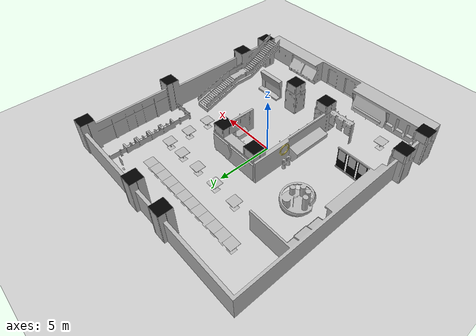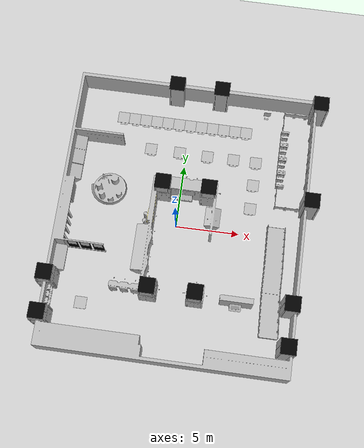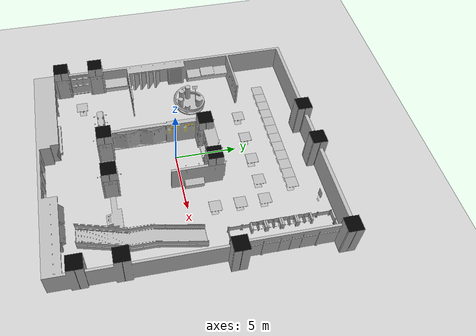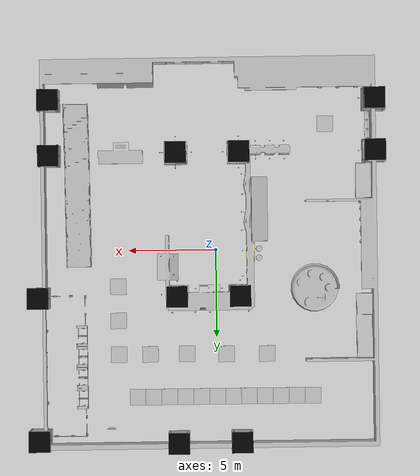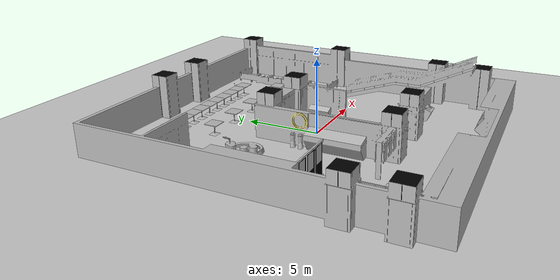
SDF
<sdf version="1.7">
 <world name="default">
  <light name="sun" type="directional">
   <pose>0 0 10 0 -0 0</pose>
   <diffuse>0.8 0.8 0.8 1</diffuse>
   <specular>0.2 0.2 0.2 1</specular>
   <attenuation>
    <range>1000</range>
    <constant>0.9</constant>
    <linear>0.01</linear>
    <quadratic>0.001</quadratic>
   </attenuation>
   <direction>-0.5 0.1 -0.9</direction>
   <spot><inner_angle>0</inner_angle><outer_angle>0</outer_angle><falloff>0</falloff></spot>
  </light>
  <model name="ground_plane">
   <static>1</static>
   <link name="link">
    <collision name="collision">
     <geometry><plane><normal>0 0 1</normal><size>100 100</size></plane></geometry>
     <surface>
      <contact><collide_bitmask>65535</collide_bitmask></contact>
      <friction><ode><mu>100</mu><mu2>50</mu2></ode></friction>
     </surface>
    </collision>
    <visual name="visual">
     <cast_shadows>0</cast_shadows>
     <geometry><plane><normal>0 0 1</normal><size>100 100</size></plane></geometry>
     <material>
      <script><uri>file://media/materials/scripts/gazebo.material</uri><name>Gazebo/Grey</name></script>
     </material>
    </visual>
   </link>
  </model>
  <gravity>0 0 -9.8</gravity>
  <magnetic_field>6e-06 2.3e-05 -4.2e-05</magnetic_field>
  <atmosphere type="adiabatic"/>
  <physics type="ode">
   <max_step_size>0.001</max_step_size>
   <real_time_factor>1</real_time_factor>
   <real_time_update_rate>1000</real_time_update_rate>
  </physics>
  <scene><ambient>0.4 0.4 0.4 1</ambient><background>0.7 0.7 0.7 1</background><shadows>1</shadows></scene>
  <spherical_coordinates>
   <surface_model>EARTH_WGS84</surface_model>
   <latitude_deg>0</latitude_deg>
   <longitude_deg>0</longitude_deg>
   <elevation>0</elevation>
   <heading_deg>0</heading_deg>
  </spherical_coordinates>
  <model name="iscas_museum">
   <link name="link">
    <inertial><mass>15</mass></inertial>
    <collision name="collision">
     <pose>0 0 0 0 0 -1.57</pose>
     <geometry><mesh><uri>model://iscas_museum/meshes/ISCAS_museum.dae</uri></mesh></geometry>
    </collision>
    <visual name="visual">
     <pose>0 0 0 0 0 -1.57</pose>
     <geometry><mesh><uri>model://iscas_museum/meshes/ISCAS_museum.dae</uri></mesh></geometry>
    </visual>
   </link>
   <static>1</static>
   <pose>0.113952 -0.189039 0 0 -0 0</pose>
  </model>
  <model name="cafe_table">
   <static>1</static>
   <link name="link">
    <collision name="surface">
     <pose>0 0 0.755 0 -0 0</pose>
     <geometry><box><size>0.913 0.913 0.04</size></box></geometry>
    </collision>
    <collision name="column">
     <pose>0 0 0.37 0 -0 0</pose>
     <geometry><box><size>0.042 0.042 0.74</size></box></geometry>
    </collision>
    <collision name="base">
     <pose>0 0 0.02 0 -0 0</pose>
     <geometry><box><size>0.56 0.56 0.04</size></box></geometry>
    </collision>
    <visual name="visual">
     <geometry><mesh><uri>model://cafe_table/meshes/cafe_table.dae</uri></mesh></geometry>
    </visual>
   </link>
   <pose>-5.44495 8.37978 0 0 -0 0</pose>
  </model>
  <model name="cafe_table_0">
   <static>1</static>
   <link name="link">
    <collision name="surface">
     <pose>0 0 0.755 0 -0 0</pose>
     <geometry><box><size>0.913 0.913 0.04</size></box></geometry>
    </collision>
    <collision name="column">
     <pose>0 0 0.37 0 -0 0</pose>
     <geometry><box><size>0.042 0.042 0.74</size></box></geometry>
    </collision>
    <collision name="base">
     <pose>0 0 0.02 0 -0 0</pose>
     <geometry><box><size>0.56 0.56 0.04</size></box></geometry>
    </collision>
    <visual name="visual">
     <geometry><mesh><uri>model://cafe_table/meshes/cafe_table.dae</uri></mesh></geometry>
    </visual>
   </link>
   <pose>-4.52984 8.38056 0 0 -0 0</pose>
  </model>
  <model name="cafe_table_1">
   <static>1</static>
   <link name="link">
    <collision name="surface">
     <pose>0 0 0.755 0 -0 0</pose>
     <geometry><box><size>0.913 0.913 0.04</size></box></geometry>
    </collision>
    <collision name="column">
     <pose>0 0 0.37 0 -0 0</pose>
     <geometry><box><size>0.042 0.042 0.74</size></box></geometry>
    </collision>
    <collision name="base">
     <pose>0 0 0.02 0 -0 0</pose>
     <geometry><box><size>0.56 0.56 0.04</size></box></geometry>
    </collision>
    <visual name="visual">
     <geometry><mesh><uri>model://cafe_table/meshes/cafe_table.dae</uri></mesh></geometry>
    </visual>
   </link>
   <pose>-3.61848 8.38057 0 0 -0 0</pose>
  </model>
  <model name="cafe_table_2">
   <static>1</static>
   <link name="link">
    <collision name="surface">
     <pose>0 0 0.755 0 -0 0</pose>
     <geometry><box><size>0.913 0.913 0.04</size></box></geometry>
    </collision>
    <collision name="column">
     <pose>0 0 0.37 0 -0 0</pose>
     <geometry><box><size>0.042 0.042 0.74</size></box></geometry>
    </collision>
    <collision name="base">
     <pose>0 0 0.02 0 -0 0</pose>
     <geometry><box><size>0.56 0.56 0.04</size></box></geometry>
    </collision>
    <visual name="visual">
     <geometry><mesh><uri>model://cafe_table/meshes/cafe_table.dae</uri></mesh></geometry>
    </visual>
   </link>
   <pose>-2.70682 8.37861 0 0 -0 0</pose>
  </model>
  <model name="cafe_table_3">
   <static>1</static>
   <link name="link">
    <collision name="surface">
     <pose>0 0 0.755 0 -0 0</pose>
     <geometry><box><size>0.913 0.913 0.04</size></box></geometry>
    </collision>
    <collision name="column">
     <pose>0 0 0.37 0 -0 0</pose>
     <geometry><box><size>0.042 0.042 0.74</size></box></geometry>
    </collision>
    <collision name="base">
     <pose>0 0 0.02 0 -0 0</pose>
     <geometry><box><size>0.56 0.56 0.04</size></box></geometry>
    </collision>
    <visual name="visual">
     <geometry><mesh><uri>model://cafe_table/meshes/cafe_table.dae</uri></mesh></geometry>
    </visual>
   </link>
   <pose>-1.80174 8.37717 0 0 -0 0</pose>
  </model>
  <model name="cafe_table_4">
   <static>1</static>
   <link name="link">
    <collision name="surface">
     <pose>0 0 0.755 0 -0 0</pose>
     <geometry><box><size>0.913 0.913 0.04</size></box></geometry>
    </collision>
    <collision name="column">
     <pose>0 0 0.37 0 -0 0</pose>
     <geometry><box><size>0.042 0.042 0.74</size></box></geometry>
    </collision>
    <collision name="base">
     <pose>0 0 0.02 0 -0 0</pose>
     <geometry><box><size>0.56 0.56 0.04</size></box></geometry>
    </collision>
    <visual name="visual">
     <geometry><mesh><uri>model://cafe_table/meshes/cafe_table.dae</uri></mesh></geometry>
    </visual>
   </link>
   <pose>-0.890094 8.37414 0 0 -0 0</pose>
  </model>
  <model name="cafe_table_5">
   <static>1</static>
   <link name="link">
    <collision name="surface">
     <pose>0 0 0.755 0 -0 0</pose>
     <geometry><box><size>0.913 0.913 0.04</size></box></geometry>
    </collision>
    <collision name="column">
     <pose>0 0 0.37 0 -0 0</pose>
     <geometry><box><size>0.042 0.042 0.74</size></box></geometry>
    </collision>
    <collision name="base">
     <pose>0 0 0.02 0 -0 0</pose>
     <geometry><box><size>0.56 0.56 0.04</size></box></geometry>
    </collision>
    <visual name="visual">
     <geometry><mesh><uri>model://cafe_table/meshes/cafe_table.dae</uri></mesh></geometry>
    </visual>
   </link>
   <pose>0.020968 8.37542 0 0 -0 0</pose>
  </model>
  <model name="cafe_table_6">
   <static>1</static>
   <link name="link">
    <collision name="surface">
     <pose>0 0 0.755 0 -0 0</pose>
     <geometry><box><size>0.913 0.913 0.04</size></box></geometry>
    </collision>
    <collision name="column">
     <pose>0 0 0.37 0 -0 0</pose>
     <geometry><box><size>0.042 0.042 0.74</size></box></geometry>
    </collision>
    <collision name="base">
     <pose>0 0 0.02 0 -0 0</pose>
     <geometry><box><size>0.56 0.56 0.04</size></box></geometry>
    </collision>
    <visual name="visual">
     <geometry><mesh><uri>model://cafe_table/meshes/cafe_table.dae</uri></mesh></geometry>
    </visual>
   </link>
   <pose>0.935067 8.37274 0 0 -0 0</pose>
  </model>
  <model name="cafe_table_7">
   <static>1</static>
   <link name="link">
    <collision name="surface">
     <pose>0 0 0.755 0 -0 0</pose>
     <geometry><box><size>0.913 0.913 0.04</size></box></geometry>
    </collision>
    <collision name="column">
     <pose>0 0 0.37 0 -0 0</pose>
     <geometry><box><size>0.042 0.042 0.74</size></box></geometry>
    </collision>
    <collision name="base">
     <pose>0 0 0.02 0 -0 0</pose>
     <geometry><box><size>0.56 0.56 0.04</size></box></geometry>
    </collision>
    <visual name="visual">
     <geometry><mesh><uri>model://cafe_table/meshes/cafe_table.dae</uri></mesh></geometry>
    </visual>
   </link>
   <pose>1.84464 8.37528 0 0 -0 0</pose>
  </model>
  <model name="cafe_table_8">
   <static>1</static>
   <link name="link">
    <collision name="surface">
     <pose>0 0 0.755 0 -0 0</pose>
     <geometry><box><size>0.913 0.913 0.04</size></box></geometry>
    </collision>
    <collision name="column">
     <pose>0 0 0.37 0 -0 0</pose>
     <geometry><box><size>0.042 0.042 0.74</size></box></geometry>
    </collision>
    <collision name="base">
     <pose>0 0 0.02 0 -0 0</pose>
     <geometry><box><size>0.56 0.56 0.04</size></box></geometry>
    </collision>
    <visual name="visual">
     <geometry><mesh><uri>model://cafe_table/meshes/cafe_table.dae</uri></mesh></geometry>
    </visual>
   </link>
   <pose>2.75717 8.37341 0 0 -0 0</pose>
  </model>
  <model name="cafe_table_9">
   <static>1</static>
   <link name="link">
    <collision name="surface">
     <pose>0 0 0.755 0 -0 0</pose>
     <geometry><box><size>0.913 0.913 0.04</size></box></geometry>
    </collision>
    <collision name="column">
     <pose>0 0 0.37 0 -0 0</pose>
     <geometry><box><size>0.042 0.042 0.74</size></box></geometry>
    </collision>
    <collision name="base">
     <pose>0 0 0.02 0 -0 0</pose>
     <geometry><box><size>0.56 0.56 0.04</size></box></geometry>
    </collision>
    <visual name="visual">
     <geometry><mesh><uri>model://cafe_table/meshes/cafe_table.dae</uri></mesh></geometry>
    </visual>
   </link>
   <pose>3.67062 8.37232 0 0 -0 0</pose>
  </model>
  <model name="cafe_table_10">
   <static>1</static>
   <link name="link">
    <collision name="surface">
     <pose>0 0 0.755 0 -0 0</pose>
     <geometry><box><size>0.913 0.913 0.04</size></box></geometry>
    </collision>
    <collision name="column">
     <pose>0 0 0.37 0 -0 0</pose>
     <geometry><box><size>0.042 0.042 0.74</size></box></geometry>
    </collision>
    <collision name="base">
     <pose>0 0 0.02 0 -0 0</pose>
     <geometry><box><size>0.56 0.56 0.04</size></box></geometry>
    </collision>
    <visual name="visual">
     <geometry><mesh><uri>model://cafe_table/meshes/cafe_table.dae</uri></mesh></geometry>
    </visual>
   </link>
   <pose>4.57317 8.37348 0 0 -0 0</pose>
  </model>
  <model name="cafe_table_11">
   <static>1</static>
   <link name="link">
    <collision name="surface">
     <pose>0 0 0.755 0 -0 0</pose>
     <geometry><box><size>0.913 0.913 0.04</size></box></geometry>
    </collision>
    <collision name="column">
     <pose>0 0 0.37 0 -0 0</pose>
     <geometry><box><size>0.042 0.042 0.74</size></box></geometry>
    </collision>
    <collision name="base">
     <pose>0 0 0.02 0 -0 0</pose>
     <geometry><box><size>0.56 0.56 0.04</size></box></geometry>
    </collision>
    <visual name="visual">
     <geometry><mesh><uri>model://cafe_table/meshes/cafe_table.dae</uri></mesh></geometry>
    </visual>
   </link>
   <pose>-2.8488 5.96237 0 0 -0 0</pose>
  </model>
  <model name="cafe_table_12">
   <static>1</static>
   <link name="link">
    <collision name="surface">
     <pose>0 0 0.755 0 -0 0</pose>
     <geometry><box><size>0.913 0.913 0.04</size></box></geometry>
    </collision>
    <collision name="column">
     <pose>0 0 0.37 0 -0 0</pose>
     <geometry><box><size>0.042 0.042 0.74</size></box></geometry>
    </collision>
    <collision name="base">
     <pose>0 0 0.02 0 -0 0</pose>
     <geometry><box><size>0.56 0.56 0.04</size></box></geometry>
    </collision>
    <visual name="visual">
     <geometry><mesh><uri>model://cafe_table/meshes/cafe_table.dae</uri></mesh></geometry>
    </visual>
   </link>
   <pose>-0.521914 5.95755 0 0 -0 0</pose>
  </model>
  <model name="cafe_table_13">
   <static>1</static>
   <link name="link">
    <collision name="surface">
     <pose>0 0 0.755 0 -0 0</pose>
     <geometry><box><size>0.913 0.913 0.04</size></box></geometry>
    </collision>
    <collision name="column">
     <pose>0 0 0.37 0 -0 0</pose>
     <geometry><box><size>0.042 0.042 0.74</size></box></geometry>
    </collision>
    <collision name="base">
     <pose>0 0 0.02 0 -0 0</pose>
     <geometry><box><size>0.56 0.56 0.04</size></box></geometry>
    </collision>
    <visual name="visual">
     <geometry><mesh><uri>model://cafe_table/meshes/cafe_table.dae</uri></mesh></geometry>
    </visual>
   </link>
   <pose>1.72982 5.92326 0 0 -0 0</pose>
  </model>
  <model name="cafe_table_14">
   <static>1</static>
   <link name="link">
    <collision name="surface">
     <pose>0 0 0.755 0 -0 0</pose>
     <geometry><box><size>0.913 0.913 0.04</size></box></geometry>
    </collision>
    <collision name="column">
     <pose>0 0 0.37 0 -0 0</pose>
     <geometry><box><size>0.042 0.042 0.74</size></box></geometry>
    </collision>
    <collision name="base">
     <pose>0 0 0.02 0 -0 0</pose>
     <geometry><box><size>0.56 0.56 0.04</size></box></geometry>
    </collision>
    <visual name="visual">
     <geometry><mesh><uri>model://cafe_table/meshes/cafe_table.dae</uri></mesh></geometry>
    </visual>
   </link>
   <pose>3.83034 5.92929 0 0 -0 0</pose>
  </model>
  <model name="cafe_table_15">
   <static>1</static>
   <link name="link">
    <collision name="surface">
     <pose>0 0 0.755 0 -0 0</pose>
     <geometry><box><size>0.913 0.913 0.04</size></box></geometry>
    </collision>
    <collision name="column">
     <pose>0 0 0.37 0 -0 0</pose>
     <geometry><box><size>0.042 0.042 0.74</size></box></geometry>
    </collision>
    <collision name="base">
     <pose>0 0 0.02 0 -0 0</pose>
     <geometry><box><size>0.56 0.56 0.04</size></box></geometry>
    </collision>
    <visual name="visual">
     <geometry><mesh><uri>model://cafe_table/meshes/cafe_table.dae</uri></mesh></geometry>
    </visual>
   </link>
   <pose>5.62632 5.91512 0 0 -0 0</pose>
  </model>
  <model name="cafe_table_16">
   <static>1</static>
   <link name="link">
    <collision name="surface">
     <pose>0 0 0.755 0 -0 0</pose>
     <geometry><box><size>0.913 0.913 0.04</size></box></geometry>
    </collision>
    <collision name="column">
     <pose>0 0 0.37 0 -0 0</pose>
     <geometry><box><size>0.042 0.042 0.74</size></box></geometry>
    </collision>
    <collision name="base">
     <pose>0 0 0.02 0 -0 0</pose>
     <geometry><box><size>0.56 0.56 0.04</size></box></geometry>
    </collision>
    <visual name="visual">
     <geometry><mesh><uri>model://cafe_table/meshes/cafe_table.dae</uri></mesh></geometry>
    </visual>
   </link>
   <pose>5.62344 3.98779 0 0 -0 0</pose>
  </model>
  <model name="cafe_table_17">
   <static>1</static>
   <link name="link">
    <collision name="surface">
     <pose>0 0 0.755 0 -0 0</pose>
     <geometry><box><size>0.913 0.913 0.04</size></box></geometry>
    </collision>
    <collision name="column">
     <pose>0 0 0.37 0 -0 0</pose>
     <geometry><box><size>0.042 0.042 0.74</size></box></geometry>
    </collision>
    <collision name="base">
     <pose>0 0 0.02 0 -0 0</pose>
     <geometry><box><size>0.56 0.56 0.04</size></box></geometry>
    </collision>
    <visual name="visual">
     <geometry><mesh><uri>model://cafe_table/meshes/cafe_table.dae</uri></mesh></geometry>
    </visual>
   </link>
   <pose>5.61935 2.02318 0 0 -0 0</pose>
  </model>
  <model name="cafe_table_18">
   <static>1</static>
   <link name="link">
    <collision name="surface">
     <pose>0 0 0.755 0 -0 0</pose>
     <geometry><box><size>0.913 0.913 0.04</size></box></geometry>
    </collision>
    <collision name="column">
     <pose>0 0 0.37 0 -0 0</pose>
     <geometry><box><size>0.042 0.042 0.74</size></box></geometry>
    </collision>
    <collision name="base">
     <pose>0 0 0.02 0 -0 0</pose>
     <geometry><box><size>0.56 0.56 0.04</size></box></geometry>
    </collision>
    <visual name="visual">
     <geometry><mesh><uri>model://cafe_table/meshes/cafe_table.dae</uri></mesh></geometry>
    </visual>
   </link>
   <pose>-6.31968 -7.1407 0 0 -0 0</pose>
  </model>
 </world>
</sdf>
